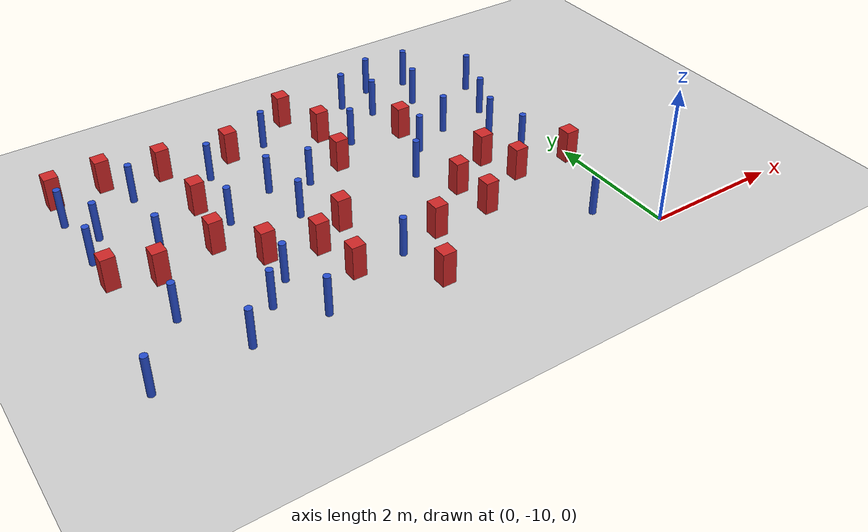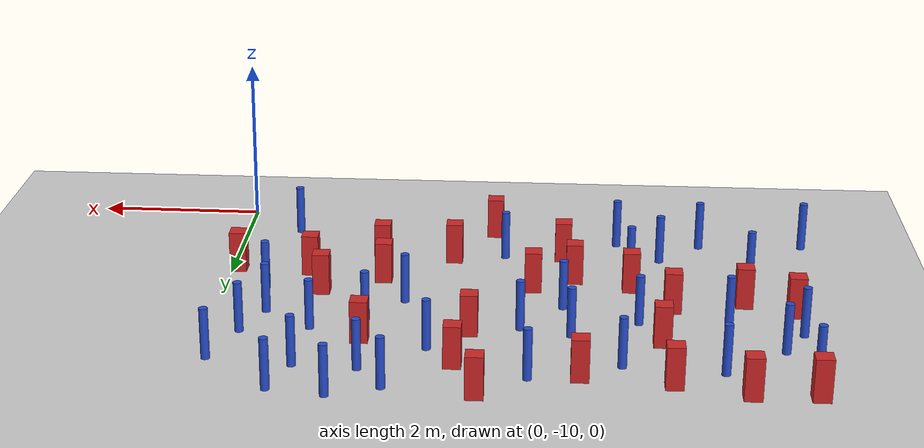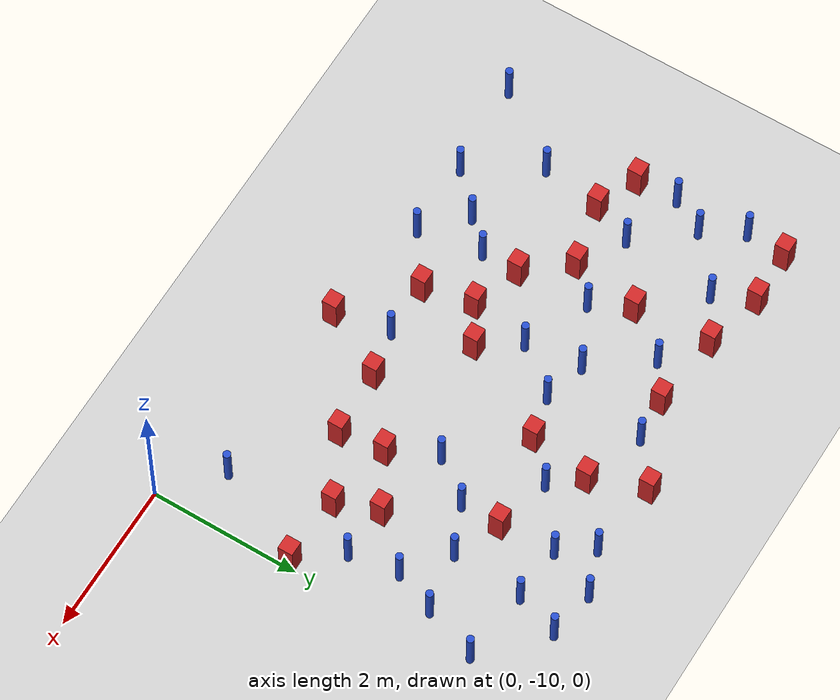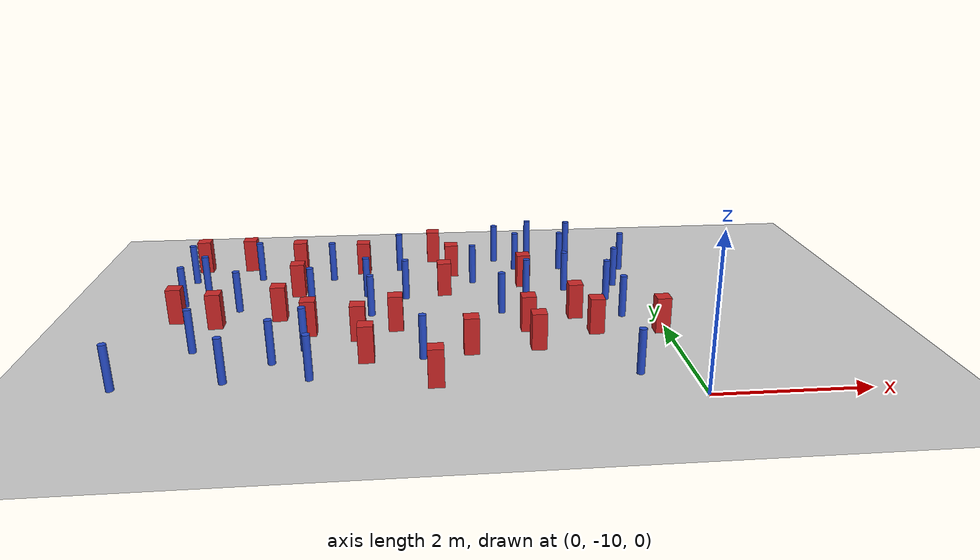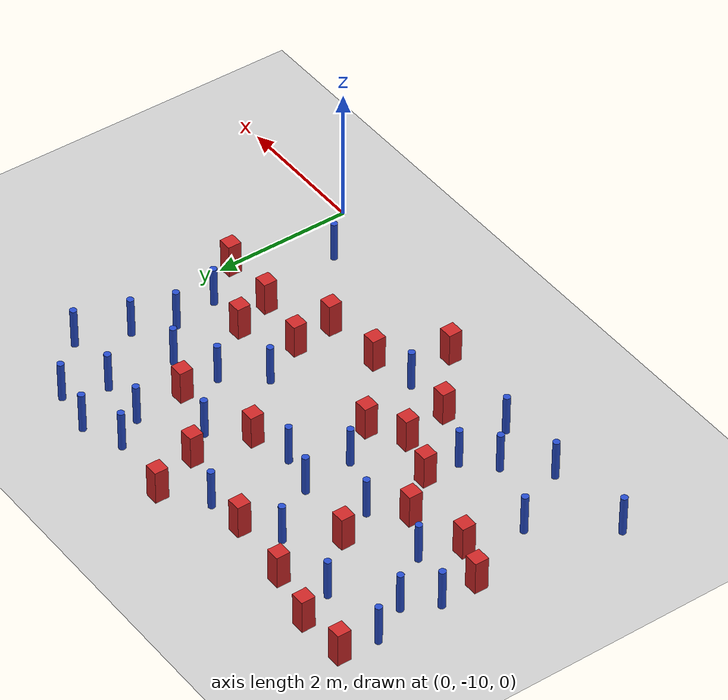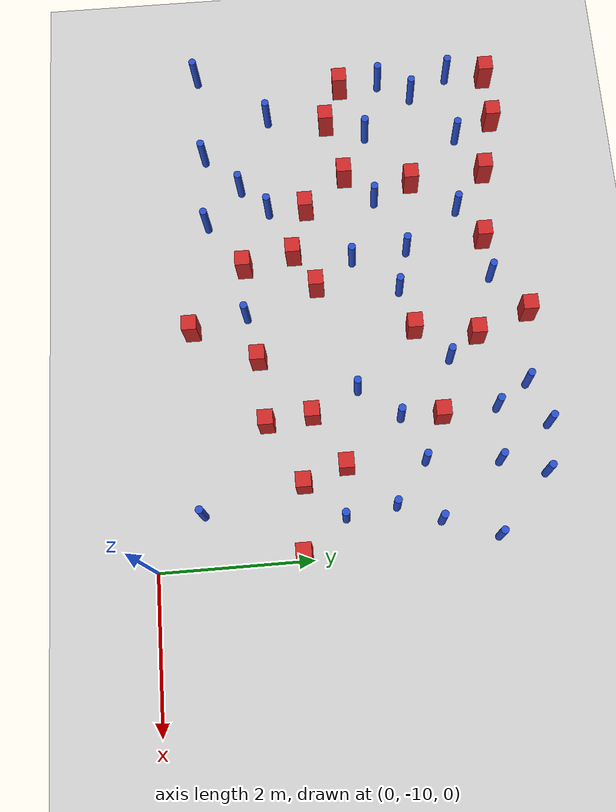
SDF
<sdf version="1.6">
 <world name="default">
  <model name="ground_plane">
   <static>1</static>
   <link name="link">
    <collision name="collision">
     <geometry><plane><normal>0 0 1</normal><size>100 100</size></plane></geometry>
     <surface><friction><ode><mu>100</mu><mu2>50</mu2></ode></friction></surface>
    </collision>
    <visual name="visual">
     <cast_shadows>0</cast_shadows>
     <geometry><plane><normal>0 0 1</normal><size>100 100</size></plane></geometry>
     <material>
      <ambient>1.0 1.0 1.0 1.0</ambient>
      <diffuse>0.8 0.8 0.8 1.0</diffuse>
      <specular>0.01 0.01 0.01 1.000000</specular>
     </material>
    </visual>
   </link>
  </model>
  <model name="square_post_obstacle3">
   <static>true</static>
   <pose>-6.00276046542 -5.0971328595 -4.36207812815e-07 3.75137919937e-06 9.77721102514e-07 2.47381364184e-05</pose>
   <link name="link">
    <pose>0 0 0.25 0 -0 0</pose>
    <inertial>
     <mass>100</mass>
     <inertia>
      <ixx>0.166667</ixx>
      <ixy>0</ixy>
      <ixz>0</ixz>
      <iyy>0.166667</iyy>
      <iyz>0</iyz>
      <izz>0.166667</izz>
     </inertia>
    </inertial>
    <collision name="collision"><geometry><box><size>.2 .2 .5</size></box></geometry></collision>
    <visual name="visual">
     <geometry><box><size>.2 .2 .5</size></box></geometry>
     <material>
      <script><name>Gazebo/Red</name><uri>file://media/materials/scripts/gazebo.material</uri></script>
     </material>
    </visual>
   </link>
  </model>
  <model name="square_post_obstacle8">
   <static>true</static>
   <pose>-1.87293484961 -7.90573309365 -4.36207812815e-07 3.75137919937e-06 9.77721102514e-07 2.47381364184e-05</pose>
   <link name="link">
    <pose>0 0 0.25 0 -0 0</pose>
    <inertial>
     <mass>100</mass>
     <inertia>
      <ixx>0.166667</ixx>
      <ixy>0</ixy>
      <ixz>0</ixz>
      <iyy>0.166667</iyy>
      <iyz>0</iyz>
      <izz>0.166667</izz>
     </inertia>
    </inertial>
    <collision name="collision"><geometry><box><size>.2 .2 .5</size></box></geometry></collision>
    <visual name="visual">
     <geometry><box><size>.2 .2 .5</size></box></geometry>
     <material>
      <script><name>Gazebo/Red</name><uri>file://media/materials/scripts/gazebo.material</uri></script>
     </material>
    </visual>
   </link>
  </model>
  <model name="pole_obstacle7">
   <static>true</static>
   <pose>-0.116427570041 -5.64152838768 -3.09024884793e-07 -7.19054271912e-07 -2.11315075136e-07 -1.93935509266e-07</pose>
   <link name="link">
    <pose>0 0 0.3 0 -0 0</pose>
    <inertial>
     <mass>1</mass>
     <inertia><ixx>0.145833</ixx><ixy>0</ixy><ixz>0</ixz><iyy>0.145833</iyy><iyz>0</iyz><izz>0.125</izz></inertia>
    </inertial>
    <collision name="collision">
     <geometry><cylinder><radius>0.05</radius><length>.6</length></cylinder></geometry>
    </collision>
    <visual name="visual">
     <geometry><cylinder><radius>0.05</radius><length>.6</length></cylinder></geometry>
     <material>
      <script><name>Gazebo/Blue</name><uri>file://media/materials/scripts/gazebo.material</uri></script>
     </material>
    </visual>
   </link>
  </model>
  <model name="square_post_obstacle30">
   <static>true</static>
   <pose>-3.09427060957 -4.92875939557 -4.36207812815e-07 3.75137919937e-06 9.77721102514e-07 2.47381364184e-05</pose>
   <link name="link">
    <pose>0 0 0.25 0 -0 0</pose>
    <inertial>
     <mass>100</mass>
     <inertia>
      <ixx>0.166667</ixx>
      <ixy>0</ixy>
      <ixz>0</ixz>
      <iyy>0.166667</iyy>
      <iyz>0</iyz>
      <izz>0.166667</izz>
     </inertia>
    </inertial>
    <collision name="collision"><geometry><box><size>.2 .2 .5</size></box></geometry></collision>
    <visual name="visual">
     <geometry><box><size>.2 .2 .5</size></box></geometry>
     <material>
      <script><name>Gazebo/Red</name><uri>file://media/materials/scripts/gazebo.material</uri></script>
     </material>
    </visual>
   </link>
  </model>
  <model name="square_post_obstacle33">
   <static>true</static>
   <pose>-0.968086502653 -8.07515536172 -4.36207812815e-07 3.75137919937e-06 9.77721102514e-07 2.47381364184e-05</pose>
   <link name="link">
    <pose>0 0 0.25 0 -0 0</pose>
    <inertial>
     <mass>100</mass>
     <inertia>
      <ixx>0.166667</ixx>
      <ixy>0</ixy>
      <ixz>0</ixz>
      <iyy>0.166667</iyy>
      <iyz>0</iyz>
      <izz>0.166667</izz>
     </inertia>
    </inertial>
    <collision name="collision"><geometry><box><size>.2 .2 .5</size></box></geometry></collision>
    <visual name="visual">
     <geometry><box><size>.2 .2 .5</size></box></geometry>
     <material>
      <script><name>Gazebo/Red</name><uri>file://media/materials/scripts/gazebo.material</uri></script>
     </material>
    </visual>
   </link>
  </model>
  <model name="pole_obstacle34">
   <static>true</static>
   <pose>-4.8326140964 -8.31596538397 -3.09024884793e-07 -7.19054271912e-07 -2.1131507513e-07 -1.93935509261e-07</pose>
   <link name="link">
    <pose>0 0 0.3 0 -0 0</pose>
    <inertial>
     <mass>1</mass>
     <inertia><ixx>0.145833</ixx><ixy>0</ixy><ixz>0</ixz><iyy>0.145833</iyy><iyz>0</iyz><izz>0.125</izz></inertia>
    </inertial>
    <collision name="collision">
     <geometry><cylinder><radius>0.05</radius><length>.6</length></cylinder></geometry>
    </collision>
    <visual name="visual">
     <geometry><cylinder><radius>0.05</radius><length>.6</length></cylinder></geometry>
     <material>
      <script><name>Gazebo/Blue</name><uri>file://media/materials/scripts/gazebo.material</uri></script>
     </material>
    </visual>
   </link>
  </model>
  <model name="pole_obstacle43">
   <static>true</static>
   <pose>-5.71055062997 -9.16776553118 -3.09024884793e-07 -7.19054271912e-07 -2.1131507513e-07 -1.93935509261e-07</pose>
   <link name="link">
    <pose>0 0 0.3 0 -0 0</pose>
    <inertial>
     <mass>1</mass>
     <inertia><ixx>0.145833</ixx><ixy>0</ixy><ixz>0</ixz><iyy>0.145833</iyy><iyz>0</iyz><izz>0.125</izz></inertia>
    </inertial>
    <collision name="collision">
     <geometry><cylinder><radius>0.05</radius><length>.6</length></cylinder></geometry>
    </collision>
    <visual name="visual">
     <geometry><cylinder><radius>0.05</radius><length>.6</length></cylinder></geometry>
     <material>
      <script><name>Gazebo/Blue</name><uri>file://media/materials/scripts/gazebo.material</uri></script>
     </material>
    </visual>
   </link>
  </model>
  <model name="square_post_obstacle48">
   <static>true</static>
   <pose>-3.66399059633 -7.73255225137 -4.36207812815e-07 3.75137919937e-06 9.77721102514e-07 2.47381364184e-05</pose>
   <link name="link">
    <pose>0 0 0.25 0 -0 0</pose>
    <inertial>
     <mass>100</mass>
     <inertia>
      <ixx>0.166667</ixx>
      <ixy>0</ixy>
      <ixz>0</ixz>
      <iyy>0.166667</iyy>
      <iyz>0</iyz>
      <izz>0.166667</izz>
     </inertia>
    </inertial>
    <collision name="collision"><geometry><box><size>.2 .2 .5</size></box></geometry></collision>
    <visual name="visual">
     <geometry><box><size>.2 .2 .5</size></box></geometry>
     <material>
      <script><name>Gazebo/Red</name><uri>file://media/materials/scripts/gazebo.material</uri></script>
     </material>
    </visual>
   </link>
  </model>
  <model name="pole_obstacle47">
   <static>true</static>
   <pose>-2.17510268073 -7.28895966684 -3.09024884793e-07 -7.19054271912e-07 -2.11315075134e-07 -1.93935509266e-07</pose>
   <link name="link">
    <pose>0 0 0.3 0 -0 0</pose>
    <inertial>
     <mass>1</mass>
     <inertia><ixx>0.145833</ixx><ixy>0</ixy><ixz>0</ixz><iyy>0.145833</iyy><iyz>0</iyz><izz>0.125</izz></inertia>
    </inertial>
    <collision name="collision">
     <geometry><cylinder><radius>0.05</radius><length>.6</length></cylinder></geometry>
    </collision>
    <visual name="visual">
     <geometry><cylinder><radius>0.05</radius><length>.6</length></cylinder></geometry>
     <material>
      <script><name>Gazebo/Blue</name><uri>file://media/materials/scripts/gazebo.material</uri></script>
     </material>
    </visual>
   </link>
  </model>
  <model name="square_post_obstacle50">
   <static>true</static>
   <pose>-4.01907634576 -8.69187092625 -4.36207812815e-07 3.75137919937e-06 9.77721102514e-07 2.47381364184e-05</pose>
   <link name="link">
    <pose>0 0 0.25 0 -0 0</pose>
    <inertial>
     <mass>100</mass>
     <inertia>
      <ixx>0.166667</ixx>
      <ixy>0</ixy>
      <ixz>0</ixz>
      <iyy>0.166667</iyy>
      <iyz>0</iyz>
      <izz>0.166667</izz>
     </inertia>
    </inertial>
    <collision name="collision"><geometry><box><size>.2 .2 .5</size></box></geometry></collision>
    <visual name="visual">
     <geometry><box><size>.2 .2 .5</size></box></geometry>
     <material>
      <script><name>Gazebo/Red</name><uri>file://media/materials/scripts/gazebo.material</uri></script>
     </material>
    </visual>
   </link>
  </model>
  <model name="square_post_obstacle52">
   <static>true</static>
   <pose>-1.16733730852 -7.51523897493 -4.36207812815e-07 3.75137919937e-06 9.77721102514e-07 2.47381364184e-05</pose>
   <link name="link">
    <pose>0 0 0.25 0 -0 0</pose>
    <inertial>
     <mass>100</mass>
     <inertia>
      <ixx>0.166667</ixx>
      <ixy>0</ixy>
      <ixz>0</ixz>
      <iyy>0.166667</iyy>
      <iyz>0</iyz>
      <izz>0.166667</izz>
     </inertia>
    </inertial>
    <collision name="collision"><geometry><box><size>.2 .2 .5</size></box></geometry></collision>
    <visual name="visual">
     <geometry><box><size>.2 .2 .5</size></box></geometry>
     <material>
      <script><name>Gazebo/Red</name><uri>file://media/materials/scripts/gazebo.material</uri></script>
     </material>
    </visual>
   </link>
  </model>
  <model name="square_post_obstacle53">
   <static>true</static>
   <pose>-3.16271652614 -9.43386406145 -4.36207812815e-07 3.75137919937e-06 9.77721102514e-07 2.47381364184e-05</pose>
   <link name="link">
    <pose>0 0 0.25 0 -0 0</pose>
    <inertial>
     <mass>100</mass>
     <inertia>
      <ixx>0.166667</ixx>
      <ixy>0</ixy>
      <ixz>0</ixz>
      <iyy>0.166667</iyy>
      <iyz>0</iyz>
      <izz>0.166667</izz>
     </inertia>
    </inertial>
    <collision name="collision"><geometry><box><size>.2 .2 .5</size></box></geometry></collision>
    <visual name="visual">
     <geometry><box><size>.2 .2 .5</size></box></geometry>
     <material>
      <script><name>Gazebo/Red</name><uri>file://media/materials/scripts/gazebo.material</uri></script>
     </material>
    </visual>
   </link>
  </model>
  <model name="pole_obstacle54">
   <static>true</static>
   <pose>-4.6617841474 -5.72175616016 -3.09024884793e-07 -7.19054271911e-07 -2.1131507516e-07 -1.93935509277e-07</pose>
   <link name="link">
    <pose>0 0 0.3 0 -0 0</pose>
    <inertial>
     <mass>1</mass>
     <inertia><ixx>0.145833</ixx><ixy>0</ixy><ixz>0</ixz><iyy>0.145833</iyy><iyz>0</iyz><izz>0.125</izz></inertia>
    </inertial>
    <collision name="collision">
     <geometry><cylinder><radius>0.05</radius><length>.6</length></cylinder></geometry>
    </collision>
    <visual name="visual">
     <geometry><cylinder><radius>0.05</radius><length>.6</length></cylinder></geometry>
     <material>
      <script><name>Gazebo/Blue</name><uri>file://media/materials/scripts/gazebo.material</uri></script>
     </material>
    </visual>
   </link>
  </model>
  <model name="square_post_obstacle58">
   <static>true</static>
   <pose>-1.75028276634 -6.21784793332 -4.36207812815e-07 3.75137919937e-06 9.77721102514e-07 2.47381364184e-05</pose>
   <link name="link">
    <pose>0 0 0.25 0 -0 0</pose>
    <inertial>
     <mass>100</mass>
     <inertia>
      <ixx>0.166667</ixx>
      <ixy>0</ixy>
      <ixz>0</ixz>
      <iyy>0.166667</iyy>
      <iyz>0</iyz>
      <izz>0.166667</izz>
     </inertia>
    </inertial>
    <collision name="collision"><geometry><box><size>.2 .2 .5</size></box></geometry></collision>
    <visual name="visual">
     <geometry><box><size>.2 .2 .5</size></box></geometry>
     <material>
      <script><name>Gazebo/Red</name><uri>file://media/materials/scripts/gazebo.material</uri></script>
     </material>
    </visual>
   </link>
  </model>
  <model name="square_post_obstacle59">
   <static>true</static>
   <pose>-5.19918778077 -5.29459210413 -4.36207812815e-07 3.75137919937e-06 9.77721102514e-07 2.47381364184e-05</pose>
   <link name="link">
    <pose>0 0 0.25 0 -0 0</pose>
    <inertial>
     <mass>100</mass>
     <inertia>
      <ixx>0.166667</ixx>
      <ixy>0</ixy>
      <ixz>0</ixz>
      <iyy>0.166667</iyy>
      <iyz>0</iyz>
      <izz>0.166667</izz>
     </inertia>
    </inertial>
    <collision name="collision"><geometry><box><size>.2 .2 .5</size></box></geometry></collision>
    <visual name="visual">
     <geometry><box><size>.2 .2 .5</size></box></geometry>
     <material>
      <script><name>Gazebo/Red</name><uri>file://media/materials/scripts/gazebo.material</uri></script>
     </material>
    </visual>
   </link>
  </model>
  <model name="pole_obstacle60">
   <static>true</static>
   <pose>-1.15331564496 -6.48685393542 -3.09024884793e-07 -7.19054271912e-07 -2.11315075134e-07 -1.93935509265e-07</pose>
   <link name="link">
    <pose>0 0 0.3 0 -0 0</pose>
    <inertial>
     <mass>1</mass>
     <inertia><ixx>0.145833</ixx><ixy>0</ixy><ixz>0</ixz><iyy>0.145833</iyy><iyz>0</iyz><izz>0.125</izz></inertia>
    </inertial>
    <collision name="collision">
     <geometry><cylinder><radius>0.05</radius><length>.6</length></cylinder></geometry>
    </collision>
    <visual name="visual">
     <geometry><cylinder><radius>0.05</radius><length>.6</length></cylinder></geometry>
     <material>
      <script><name>Gazebo/Blue</name><uri>file://media/materials/scripts/gazebo.material</uri></script>
     </material>
    </visual>
   </link>
  </model>
  <model name="pole_obstacle67">
   <static>true</static>
   <pose>-3.63953868584 -5.36636908471 -3.09024884848e-07 -7.19054271903e-07 -2.11315075193e-07 -1.93935509285e-07</pose>
   <link name="link">
    <pose>0 0 0.3 0 -0 0</pose>
    <inertial>
     <mass>1</mass>
     <inertia><ixx>0.145833</ixx><ixy>0</ixy><ixz>0</ixz><iyy>0.145833</iyy><iyz>0</iyz><izz>0.125</izz></inertia>
    </inertial>
    <collision name="collision">
     <geometry><cylinder><radius>0.05</radius><length>.6</length></cylinder></geometry>
    </collision>
    <visual name="visual">
     <geometry><cylinder><radius>0.05</radius><length>.6</length></cylinder></geometry>
     <material>
      <script><name>Gazebo/Blue</name><uri>file://media/materials/scripts/gazebo.material</uri></script>
     </material>
    </visual>
   </link>
  </model>
  <model name="square_post_obstacle73">
   <static>true</static>
   <pose>-0.0788364166553 -8.12637603178 -4.36207812815e-07 3.75137919937e-06 9.77721102514e-07 2.47381364184e-05</pose>
   <link name="link">
    <pose>0 0 0.25 0 -0 0</pose>
    <inertial>
     <mass>100</mass>
     <inertia>
      <ixx>0.166667</ixx>
      <ixy>0</ixy>
      <ixz>0</ixz>
      <iyy>0.166667</iyy>
      <iyz>0</iyz>
      <izz>0.166667</izz>
     </inertia>
    </inertial>
    <collision name="collision"><geometry><box><size>.2 .2 .5</size></box></geometry></collision>
    <visual name="visual">
     <geometry><box><size>.2 .2 .5</size></box></geometry>
     <material>
      <script><name>Gazebo/Red</name><uri>file://media/materials/scripts/gazebo.material</uri></script>
     </material>
    </visual>
   </link>
  </model>
  <model name="square_post_obstacle76">
   <static>true</static>
   <pose>-5.1235877152 -6.32033725181 -4.36207812815e-07 3.75137919937e-06 9.77721102514e-07 2.47381364184e-05</pose>
   <link name="link">
    <pose>0 0 0.25 0 -0 0</pose>
    <inertial>
     <mass>100</mass>
     <inertia>
      <ixx>0.166667</ixx>
      <ixy>0</ixy>
      <ixz>0</ixz>
      <iyy>0.166667</iyy>
      <iyz>0</iyz>
      <izz>0.166667</izz>
     </inertia>
    </inertial>
    <collision name="collision"><geometry><box><size>.2 .2 .5</size></box></geometry></collision>
    <visual name="visual">
     <geometry><box><size>.2 .2 .5</size></box></geometry>
     <material>
      <script><name>Gazebo/Red</name><uri>file://media/materials/scripts/gazebo.material</uri></script>
     </material>
    </visual>
   </link>
  </model>
  <model name="pole_obstacle98">
   <static>true</static>
   <pose>-4.11009366022 -6.46756475279 -3.09024884793e-07 -7.19054271911e-07 -2.1131507516e-07 -1.93935509277e-07</pose>
   <link name="link">
    <pose>0 0 0.3 0 -0 0</pose>
    <inertial>
     <mass>1</mass>
     <inertia><ixx>0.145833</ixx><ixy>0</ixy><ixz>0</ixz><iyy>0.145833</iyy><iyz>0</iyz><izz>0.125</izz></inertia>
    </inertial>
    <collision name="collision">
     <geometry><cylinder><radius>0.05</radius><length>.6</length></cylinder></geometry>
    </collision>
    <visual name="visual">
     <geometry><cylinder><radius>0.05</radius><length>.6</length></cylinder></geometry>
     <material>
      <script><name>Gazebo/Blue</name><uri>file://media/materials/scripts/gazebo.material</uri></script>
     </material>
    </visual>
   </link>
  </model>
  <model name="pole_obstacle100">
   <static>true</static>
   <pose>-3.30623165146 -8.69643244053 -3.09024884793e-07 -7.19054271912e-07 -2.11315075137e-07 -1.93935509267e-07</pose>
   <link name="link">
    <pose>0 0 0.3 0 -0 0</pose>
    <inertial>
     <mass>1</mass>
     <inertia><ixx>0.145833</ixx><ixy>0</ixy><ixz>0</ixz><iyy>0.145833</iyy><iyz>0</iyz><izz>0.125</izz></inertia>
    </inertial>
    <collision name="collision">
     <geometry><cylinder><radius>0.05</radius><length>.6</length></cylinder></geometry>
    </collision>
    <visual name="visual">
     <geometry><cylinder><radius>0.05</radius><length>.6</length></cylinder></geometry>
     <material>
      <script><name>Gazebo/Blue</name><uri>file://media/materials/scripts/gazebo.material</uri></script>
     </material>
    </visual>
   </link>
  </model>
  <model name="square_post_obstacle89">
   <static>true</static>
   <pose>-2.9631400983 -6.47000109566 -4.36207812815e-07 3.75137919937e-06 9.77721102514e-07 2.47381364184e-05</pose>
   <link name="link">
    <pose>0 0 0.25 0 -0 0</pose>
    <inertial>
     <mass>100</mass>
     <inertia>
      <ixx>0.166667</ixx>
      <ixy>0</ixy>
      <ixz>0</ixz>
      <iyy>0.166667</iyy>
      <iyz>0</iyz>
      <izz>0.166667</izz>
     </inertia>
    </inertial>
    <collision name="collision"><geometry><box><size>.2 .2 .5</size></box></geometry></collision>
    <visual name="visual">
     <geometry><box><size>.2 .2 .5</size></box></geometry>
     <material>
      <script><name>Gazebo/Red</name><uri>file://media/materials/scripts/gazebo.material</uri></script>
     </material>
    </visual>
   </link>
  </model>
  <model name="pole_obstacle109">
   <static>true</static>
   <pose>-4.88362288577 -6.84523428579 -3.09024884793e-07 -7.19054271911e-07 -2.1131507516e-07 -1.93935509277e-07</pose>
   <link name="link">
    <pose>0 0 0.3 0 -0 0</pose>
    <inertial>
     <mass>1</mass>
     <inertia><ixx>0.145833</ixx><ixy>0</ixy><ixz>0</ixz><iyy>0.145833</iyy><iyz>0</iyz><izz>0.125</izz></inertia>
    </inertial>
    <collision name="collision">
     <geometry><cylinder><radius>0.05</radius><length>.6</length></cylinder></geometry>
    </collision>
    <visual name="visual">
     <geometry><cylinder><radius>0.05</radius><length>.6</length></cylinder></geometry>
     <material>
      <script><name>Gazebo/Blue</name><uri>file://media/materials/scripts/gazebo.material</uri></script>
     </material>
    </visual>
   </link>
  </model>
  <model name="pole_obstacle112">
   <static>true</static>
   <pose>-0.667018413034 -9.37456317982 -3.09024884793e-07 -7.19054271911e-07 -2.11315075158e-07 -1.93935509277e-07</pose>
   <link name="link">
    <pose>0 0 0.3 0 -0 0</pose>
    <inertial>
     <mass>1</mass>
     <inertia><ixx>0.145833</ixx><ixy>0</ixy><ixz>0</ixz><iyy>0.145833</iyy><iyz>0</iyz><izz>0.125</izz></inertia>
    </inertial>
    <collision name="collision">
     <geometry><cylinder><radius>0.05</radius><length>.6</length></cylinder></geometry>
    </collision>
    <visual name="visual">
     <geometry><cylinder><radius>0.05</radius><length>.6</length></cylinder></geometry>
     <material>
      <script><name>Gazebo/Blue</name><uri>file://media/materials/scripts/gazebo.material</uri></script>
     </material>
    </visual>
   </link>
  </model>
  <model name="pole_obstacle114">
   <static>true</static>
   <pose>-1.79661520682 -5.48379876277 -3.09024884793e-07 -7.19054271912e-07 -2.11315075134e-07 -1.93935509265e-07</pose>
   <link name="link">
    <pose>0 0 0.3 0 -0 0</pose>
    <inertial>
     <mass>1</mass>
     <inertia><ixx>0.145833</ixx><ixy>0</ixy><ixz>0</ixz><iyy>0.145833</iyy><iyz>0</iyz><izz>0.125</izz></inertia>
    </inertial>
    <collision name="collision">
     <geometry><cylinder><radius>0.05</radius><length>.6</length></cylinder></geometry>
    </collision>
    <visual name="visual">
     <geometry><cylinder><radius>0.05</radius><length>.6</length></cylinder></geometry>
     <material>
      <script><name>Gazebo/Blue</name><uri>file://media/materials/scripts/gazebo.material</uri></script>
     </material>
    </visual>
   </link>
  </model>
  <model name="pole_obstacle115">
   <static>true</static>
   <pose>-5.90617883429 -6.89209488714 -3.09024884793e-07 -7.19054271911e-07 -2.1131507516e-07 -1.93935509277e-07</pose>
   <link name="link">
    <pose>0 0 0.3 0 -0 0</pose>
    <inertial>
     <mass>1</mass>
     <inertia><ixx>0.145833</ixx><ixy>0</ixy><ixz>0</ixz><iyy>0.145833</iyy><iyz>0</iyz><izz>0.125</izz></inertia>
    </inertial>
    <collision name="collision">
     <geometry><cylinder><radius>0.05</radius><length>.6</length></cylinder></geometry>
    </collision>
    <visual name="visual">
     <geometry><cylinder><radius>0.05</radius><length>.6</length></cylinder></geometry>
     <material>
      <script><name>Gazebo/Blue</name><uri>file://media/materials/scripts/gazebo.material</uri></script>
     </material>
    </visual>
   </link>
  </model>
  <model name="pole_obstacle116">
   <static>true</static>
   <pose>-2.09701376354 -5.05747303563 -3.09024884793e-07 -7.19054271912e-07 -2.11315075134e-07 -1.93935509266e-07</pose>
   <link name="link">
    <pose>0 0 0.3 0 -0 0</pose>
    <inertial>
     <mass>1</mass>
     <inertia><ixx>0.145833</ixx><ixy>0</ixy><ixz>0</ixz><iyy>0.145833</iyy><iyz>0</iyz><izz>0.125</izz></inertia>
    </inertial>
    <collision name="collision">
     <geometry><cylinder><radius>0.05</radius><length>.6</length></cylinder></geometry>
    </collision>
    <visual name="visual">
     <geometry><cylinder><radius>0.05</radius><length>.6</length></cylinder></geometry>
     <material>
      <script><name>Gazebo/Blue</name><uri>file://media/materials/scripts/gazebo.material</uri></script>
     </material>
    </visual>
   </link>
  </model>
  <model name="pole_obstacle123">
   <static>true</static>
   <pose>-5.77235732267 -5.61809090305 -3.09024884793e-07 -7.19054271911e-07 -2.1131507516e-07 -1.93935509277e-07</pose>
   <link name="link">
    <pose>0 0 0.3 0 -0 0</pose>
    <inertial>
     <mass>1</mass>
     <inertia><ixx>0.145833</ixx><ixy>0</ixy><ixz>0</ixz><iyy>0.145833</iyy><iyz>0</iyz><izz>0.125</izz></inertia>
    </inertial>
    <collision name="collision">
     <geometry><cylinder><radius>0.05</radius><length>.6</length></cylinder></geometry>
    </collision>
    <visual name="visual">
     <geometry><cylinder><radius>0.05</radius><length>.6</length></cylinder></geometry>
     <material>
      <script><name>Gazebo/Blue</name><uri>file://media/materials/scripts/gazebo.material</uri></script>
     </material>
    </visual>
   </link>
  </model>
  <model name="pole_obstacle128">
   <static>true</static>
   <pose>-4.01821982749 -7.22079764416 -3.09024884793e-07 -7.19054271911e-07 -2.11315075165e-07 -1.9393550928e-07</pose>
   <link name="link">
    <pose>0 0 0.3 0 -0 0</pose>
    <inertial>
     <mass>1</mass>
     <inertia><ixx>0.145833</ixx><ixy>0</ixy><ixz>0</ixz><iyy>0.145833</iyy><iyz>0</iyz><izz>0.125</izz></inertia>
    </inertial>
    <collision name="collision">
     <geometry><cylinder><radius>0.05</radius><length>.6</length></cylinder></geometry>
    </collision>
    <visual name="visual">
     <geometry><cylinder><radius>0.05</radius><length>.6</length></cylinder></geometry>
     <material>
      <script><name>Gazebo/Blue</name><uri>file://media/materials/scripts/gazebo.material</uri></script>
     </material>
    </visual>
   </link>
  </model>
  <model name="square_post_obstacle115">
   <static>true</static>
   <pose>-6.69328758737 -7.19517452916 -4.36207812815e-07 3.75137919937e-06 9.77721102514e-07 2.47381364184e-05</pose>
   <link name="link">
    <pose>0 0 0.25 0 -0 0</pose>
    <inertial>
     <mass>100</mass>
     <inertia>
      <ixx>0.166667</ixx>
      <ixy>0</ixy>
      <ixz>0</ixz>
      <iyy>0.166667</iyy>
      <iyz>0</iyz>
      <izz>0.166667</izz>
     </inertia>
    </inertial>
    <collision name="collision"><geometry><box><size>.2 .2 .5</size></box></geometry></collision>
    <visual name="visual">
     <geometry><box><size>.2 .2 .5</size></box></geometry>
     <material>
      <script><name>Gazebo/Red</name><uri>file://media/materials/scripts/gazebo.material</uri></script>
     </material>
    </visual>
   </link>
  </model>
  <model name="pole_obstacle135">
   <static>true</static>
   <pose>-6.47810907923 -6.19457628557 -3.09024884793e-07 -7.19054271911e-07 -2.1131507516e-07 -1.93935509277e-07</pose>
   <link name="link">
    <pose>0 0 0.3 0 -0 0</pose>
    <inertial>
     <mass>1</mass>
     <inertia><ixx>0.145833</ixx><ixy>0</ixy><ixz>0</ixz><iyy>0.145833</iyy><iyz>0</iyz><izz>0.125</izz></inertia>
    </inertial>
    <collision name="collision">
     <geometry><cylinder><radius>0.05</radius><length>.6</length></cylinder></geometry>
    </collision>
    <visual name="visual">
     <geometry><cylinder><radius>0.05</radius><length>.6</length></cylinder></geometry>
     <material>
      <script><name>Gazebo/Blue</name><uri>file://media/materials/scripts/gazebo.material</uri></script>
     </material>
    </visual>
   </link>
  </model>
  <model name="square_post_obstacle136">
   <static>true</static>
   <pose>-2.82220053654 -5.64241659469 -4.36207812815e-07 3.75137919937e-06 9.77721102514e-07 2.47381364184e-05</pose>
   <link name="link">
    <pose>0 0 0.25 0 -0 0</pose>
    <inertial>
     <mass>100</mass>
     <inertia>
      <ixx>0.166667</ixx>
      <ixy>0</ixy>
      <ixz>0</ixz>
      <iyy>0.166667</iyy>
      <iyz>0</iyz>
      <izz>0.166667</izz>
     </inertia>
    </inertial>
    <collision name="collision"><geometry><box><size>.2 .2 .5</size></box></geometry></collision>
    <visual name="visual">
     <geometry><box><size>.2 .2 .5</size></box></geometry>
     <material>
      <script><name>Gazebo/Red</name><uri>file://media/materials/scripts/gazebo.material</uri></script>
     </material>
    </visual>
   </link>
  </model>
  <model name="pole_obstacle147">
   <static>true</static>
   <pose>-0.593938877173 -6.91154278654 -3.09024884793e-07 -7.19054271912e-07 -2.11315075129e-07 -1.93935509261e-07</pose>
   <link name="link">
    <pose>0 0 0.3 0 -0 0</pose>
    <inertial>
     <mass>1</mass>
     <inertia><ixx>0.145833</ixx><ixy>0</ixy><ixz>0</ixz><iyy>0.145833</iyy><iyz>0</iyz><izz>0.125</izz></inertia>
    </inertial>
    <collision name="collision">
     <geometry><cylinder><radius>0.05</radius><length>.6</length></cylinder></geometry>
    </collision>
    <visual name="visual">
     <geometry><cylinder><radius>0.05</radius><length>.6</length></cylinder></geometry>
     <material>
      <script><name>Gazebo/Blue</name><uri>file://media/materials/scripts/gazebo.material</uri></script>
     </material>
    </visual>
   </link>
  </model>
  <model name="square_post_obstacle141">
   <static>true</static>
   <pose>-2.68657871046 -8.56733343162 -4.36207812815e-07 3.75137919937e-06 9.77721102514e-07 2.47381364184e-05</pose>
   <link name="link">
    <pose>0 0 0.25 0 -0 0</pose>
    <inertial>
     <mass>100</mass>
     <inertia>
      <ixx>0.166667</ixx>
      <ixy>0</ixy>
      <ixz>0</ixz>
      <iyy>0.166667</iyy>
      <iyz>0</iyz>
      <izz>0.166667</izz>
     </inertia>
    </inertial>
    <collision name="collision"><geometry><box><size>.2 .2 .5</size></box></geometry></collision>
    <visual name="visual">
     <geometry><box><size>.2 .2 .5</size></box></geometry>
     <material>
      <script><name>Gazebo/Red</name><uri>file://media/materials/scripts/gazebo.material</uri></script>
     </material>
    </visual>
   </link>
  </model>
  <model name="pole_obstacle158">
   <static>true</static>
   <pose>-3.53450509645 -6.61639379699 -3.09024884793e-07 -7.19054271912e-07 -2.11315075134e-07 -1.93935509266e-07</pose>
   <link name="link">
    <pose>0 0 0.3 0 -0 0</pose>
    <inertial>
     <mass>1</mass>
     <inertia><ixx>0.145833</ixx><ixy>0</ixy><ixz>0</ixz><iyy>0.145833</iyy><iyz>0</iyz><izz>0.125</izz></inertia>
    </inertial>
    <collision name="collision">
     <geometry><cylinder><radius>0.05</radius><length>.6</length></cylinder></geometry>
    </collision>
    <visual name="visual">
     <geometry><cylinder><radius>0.05</radius><length>.6</length></cylinder></geometry>
     <material>
      <script><name>Gazebo/Blue</name><uri>file://media/materials/scripts/gazebo.material</uri></script>
     </material>
    </visual>
   </link>
  </model>
  <model name="square_post_obstacle157">
   <static>true</static>
   <pose>-4.15458452498 -8.01385528971 -4.36207812815e-07 3.75137919937e-06 9.77721102514e-07 2.47381364184e-05</pose>
   <link name="link">
    <pose>0 0 0.25 0 -0 0</pose>
    <inertial>
     <mass>100</mass>
     <inertia>
      <ixx>0.166667</ixx>
      <ixy>0</ixy>
      <ixz>0</ixz>
      <iyy>0.166667</iyy>
      <iyz>0</iyz>
      <izz>0.166667</izz>
     </inertia>
    </inertial>
    <collision name="collision"><geometry><box><size>.2 .2 .5</size></box></geometry></collision>
    <visual name="visual">
     <geometry><box><size>.2 .2 .5</size></box></geometry>
     <material>
      <script><name>Gazebo/Red</name><uri>file://media/materials/scripts/gazebo.material</uri></script>
     </material>
    </visual>
   </link>
  </model>
  <model name="square_post_obstacle163">
   <static>true</static>
   <pose>-4.82094241826 -7.80079124392 -4.36207812815e-07 3.75137919937e-06 9.77721102514e-07 2.47381364184e-05</pose>
   <link name="link">
    <pose>0 0 0.25 0 -0 0</pose>
    <inertial>
     <mass>100</mass>
     <inertia>
      <ixx>0.166667</ixx>
      <ixy>0</ixy>
      <ixz>0</ixz>
      <iyy>0.166667</iyy>
      <iyz>0</iyz>
      <izz>0.166667</izz>
     </inertia>
    </inertial>
    <collision name="collision"><geometry><box><size>.2 .2 .5</size></box></geometry></collision>
    <visual name="visual">
     <geometry><box><size>.2 .2 .5</size></box></geometry>
     <material>
      <script><name>Gazebo/Red</name><uri>file://media/materials/scripts/gazebo.material</uri></script>
     </material>
    </visual>
   </link>
  </model>
  <model name="pole_obstacle174">
   <static>true</static>
   <pose>-6.72588692631 -6.64371320738 -3.09024884793e-07 -7.19054271911e-07 -2.1131507516e-07 -1.93935509277e-07</pose>
   <link name="link">
    <pose>0 0 0.3 0 -0 0</pose>
    <inertial>
     <mass>1</mass>
     <inertia><ixx>0.145833</ixx><ixy>0</ixy><ixz>0</ixz><iyy>0.145833</iyy><iyz>0</iyz><izz>0.125</izz></inertia>
    </inertial>
    <collision name="collision">
     <geometry><cylinder><radius>0.05</radius><length>.6</length></cylinder></geometry>
    </collision>
    <visual name="visual">
     <geometry><cylinder><radius>0.05</radius><length>.6</length></cylinder></geometry>
     <material>
      <script><name>Gazebo/Blue</name><uri>file://media/materials/scripts/gazebo.material</uri></script>
     </material>
    </visual>
   </link>
  </model>
  <model name="square_post_obstacle170">
   <static>true</static>
   <pose>-5.28274349998 -7.23727846553 -4.36207812815e-07 3.75137919937e-06 9.77721102514e-07 2.47381364184e-05</pose>
   <link name="link">
    <pose>0 0 0.25 0 -0 0</pose>
    <inertial>
     <mass>100</mass>
     <inertia>
      <ixx>0.166667</ixx>
      <ixy>0</ixy>
      <ixz>0</ixz>
      <iyy>0.166667</iyy>
      <iyz>0</iyz>
      <izz>0.166667</izz>
     </inertia>
    </inertial>
    <collision name="collision"><geometry><box><size>.2 .2 .5</size></box></geometry></collision>
    <visual name="visual">
     <geometry><box><size>.2 .2 .5</size></box></geometry>
     <material>
      <script><name>Gazebo/Red</name><uri>file://media/materials/scripts/gazebo.material</uri></script>
     </material>
    </visual>
   </link>
  </model>
  <model name="pole_obstacle183">
   <static>true</static>
   <pose>-4.68589607145 -9.16973188831 -3.09024884793e-07 -7.19054271912e-07 -2.1131507513e-07 -1.93935509261e-07</pose>
   <link name="link">
    <pose>0 0 0.3 0 -0 0</pose>
    <inertial>
     <mass>1</mass>
     <inertia><ixx>0.145833</ixx><ixy>0</ixy><ixz>0</ixz><iyy>0.145833</iyy><iyz>0</iyz><izz>0.125</izz></inertia>
    </inertial>
    <collision name="collision">
     <geometry><cylinder><radius>0.05</radius><length>.6</length></cylinder></geometry>
    </collision>
    <visual name="visual">
     <geometry><cylinder><radius>0.05</radius><length>.6</length></cylinder></geometry>
     <material>
      <script><name>Gazebo/Blue</name><uri>file://media/materials/scripts/gazebo.material</uri></script>
     </material>
    </visual>
   </link>
  </model>
  <model name="pole_obstacle185">
   <static>true</static>
   <pose>-6.76574518127 -5.65952526431 -3.09024884793e-07 -7.19054271911e-07 -2.1131507516e-07 -1.93935509277e-07</pose>
   <link name="link">
    <pose>0 0 0.3 0 -0 0</pose>
    <inertial>
     <mass>1</mass>
     <inertia><ixx>0.145833</ixx><ixy>0</ixy><ixz>0</ixz><iyy>0.145833</iyy><iyz>0</iyz><izz>0.125</izz></inertia>
    </inertial>
    <collision name="collision">
     <geometry><cylinder><radius>0.05</radius><length>.6</length></cylinder></geometry>
    </collision>
    <visual name="visual">
     <geometry><cylinder><radius>0.05</radius><length>.6</length></cylinder></geometry>
     <material>
      <script><name>Gazebo/Blue</name><uri>file://media/materials/scripts/gazebo.material</uri></script>
     </material>
    </visual>
   </link>
  </model>
  <model name="square_post_obstacle175">
   <static>true</static>
   <pose>-6.71575062232 -5.11822528603 -4.36207812815e-07 3.75137919937e-06 9.77721102514e-07 2.47381364184e-05</pose>
   <link name="link">
    <pose>0 0 0.25 0 -0 0</pose>
    <inertial>
     <mass>100</mass>
     <inertia>
      <ixx>0.166667</ixx>
      <ixy>0</ixy>
      <ixz>0</ixz>
      <iyy>0.166667</iyy>
      <iyz>0</iyz>
      <izz>0.166667</izz>
     </inertia>
    </inertial>
    <collision name="collision"><geometry><box><size>.2 .2 .5</size></box></geometry></collision>
    <visual name="visual">
     <geometry><box><size>.2 .2 .5</size></box></geometry>
     <material>
      <script><name>Gazebo/Red</name><uri>file://media/materials/scripts/gazebo.material</uri></script>
     </material>
    </visual>
   </link>
  </model>
  <model name="square_post_obstacle181">
   <static>true</static>
   <pose>-6.11965471049 -7.43270942692 -4.36207812815e-07 3.75137919937e-06 9.77721102514e-07 2.47381364184e-05</pose>
   <link name="link">
    <pose>0 0 0.25 0 -0 0</pose>
    <inertial>
     <mass>100</mass>
     <inertia>
      <ixx>0.166667</ixx>
      <ixy>0</ixy>
      <ixz>0</ixz>
      <iyy>0.166667</iyy>
      <iyz>0</iyz>
      <izz>0.166667</izz>
     </inertia>
    </inertial>
    <collision name="collision"><geometry><box><size>.2 .2 .5</size></box></geometry></collision>
    <visual name="visual">
     <geometry><box><size>.2 .2 .5</size></box></geometry>
     <material>
      <script><name>Gazebo/Red</name><uri>file://media/materials/scripts/gazebo.material</uri></script>
     </material>
    </visual>
   </link>
  </model>
  <model name="square_post_obstacle184">
   <static>true</static>
   <pose>-4.20066603699 -5.40871287737 -4.36207812815e-07 3.75137919937e-06 9.77721102514e-07 2.47381364184e-05</pose>
   <link name="link">
    <pose>0 0 0.25 0 -0 0</pose>
    <inertial>
     <mass>100</mass>
     <inertia>
      <ixx>0.166667</ixx>
      <ixy>0</ixy>
      <ixz>0</ixz>
      <iyy>0.166667</iyy>
      <iyz>0</iyz>
      <izz>0.166667</izz>
     </inertia>
    </inertial>
    <collision name="collision"><geometry><box><size>.2 .2 .5</size></box></geometry></collision>
    <visual name="visual">
     <geometry><box><size>.2 .2 .5</size></box></geometry>
     <material>
      <script><name>Gazebo/Red</name><uri>file://media/materials/scripts/gazebo.material</uri></script>
     </material>
    </visual>
   </link>
  </model>
  <model name="square_post_obstacle192">
   <static>true</static>
   <pose>-1.80846645586 -8.5073114422 -4.36207812815e-07 3.75137919937e-06 9.77721102514e-07 2.47381364184e-05</pose>
   <link name="link">
    <pose>0 0 0.25 0 -0 0</pose>
    <inertial>
     <mass>100</mass>
     <inertia>
      <ixx>0.166667</ixx>
      <ixy>0</ixy>
      <ixz>0</ixz>
      <iyy>0.166667</iyy>
      <iyz>0</iyz>
      <izz>0.166667</izz>
     </inertia>
    </inertial>
    <collision name="collision"><geometry><box><size>.2 .2 .5</size></box></geometry></collision>
    <visual name="visual">
     <geometry><box><size>.2 .2 .5</size></box></geometry>
     <material>
      <script><name>Gazebo/Red</name><uri>file://media/materials/scripts/gazebo.material</uri></script>
     </material>
    </visual>
   </link>
  </model>
  <model name="pole_obstacle189">
   <static>true</static>
   <pose>-1.52163869688 -4.84064018304 -3.09024884793e-07 -7.19054271912e-07 -2.11315075134e-07 -1.93935509265e-07</pose>
   <link name="link">
    <pose>0 0 0.3 0 -0 0</pose>
    <inertial>
     <mass>1</mass>
     <inertia><ixx>0.145833</ixx><ixy>0</ixy><ixz>0</ixz><iyy>0.145833</iyy><iyz>0</iyz><izz>0.125</izz></inertia>
    </inertial>
    <collision name="collision">
     <geometry><cylinder><radius>0.05</radius><length>.6</length></cylinder></geometry>
    </collision>
    <visual name="visual">
     <geometry><cylinder><radius>0.05</radius><length>.6</length></cylinder></geometry>
     <material>
      <script><name>Gazebo/Blue</name><uri>file://media/materials/scripts/gazebo.material</uri></script>
     </material>
    </visual>
   </link>
  </model>
  <model name="pole_obstacle196">
   <static>true</static>
   <pose>-0.369090890343 -6.3549096529 -3.09024884793e-07 -7.19054271912e-07 -2.1131507513e-07 -1.93935509262e-07</pose>
   <link name="link">
    <pose>0 0 0.3 0 -0 0</pose>
    <inertial>
     <mass>1</mass>
     <inertia><ixx>0.145833</ixx><ixy>0</ixy><ixz>0</ixz><iyy>0.145833</iyy><iyz>0</iyz><izz>0.125</izz></inertia>
    </inertial>
    <collision name="collision">
     <geometry><cylinder><radius>0.05</radius><length>.6</length></cylinder></geometry>
    </collision>
    <visual name="visual">
     <geometry><cylinder><radius>0.05</radius><length>.6</length></cylinder></geometry>
     <material>
      <script><name>Gazebo/Blue</name><uri>file://media/materials/scripts/gazebo.material</uri></script>
     </material>
    </visual>
   </link>
  </model>
  <model name="pole_obstacle198">
   <static>true</static>
   <pose>-6.26380639157 -8.25276823453 -3.09024884793e-07 -7.19054271912e-07 -2.1131507513e-07 -1.93935509261e-07</pose>
   <link name="link">
    <pose>0 0 0.3 0 -0 0</pose>
    <inertial>
     <mass>1</mass>
     <inertia><ixx>0.145833</ixx><ixy>0</ixy><ixz>0</ixz><iyy>0.145833</iyy><iyz>0</iyz><izz>0.125</izz></inertia>
    </inertial>
    <collision name="collision">
     <geometry><cylinder><radius>0.05</radius><length>.6</length></cylinder></geometry>
    </collision>
    <visual name="visual">
     <geometry><cylinder><radius>0.05</radius><length>.6</length></cylinder></geometry>
     <material>
      <script><name>Gazebo/Blue</name><uri>file://media/materials/scripts/gazebo.material</uri></script>
     </material>
    </visual>
   </link>
  </model>
  <model name="pole_obstacle199">
   <static>true</static>
   <pose>-1.07965315018 -5.52884753838 -3.09024884793e-07 -7.19054271912e-07 -2.11315075134e-07 -1.93935509265e-07</pose>
   <link name="link">
    <pose>0 0 0.3 0 -0 0</pose>
    <inertial>
     <mass>1</mass>
     <inertia><ixx>0.145833</ixx><ixy>0</ixy><ixz>0</ixz><iyy>0.145833</iyy><iyz>0</iyz><izz>0.125</izz></inertia>
    </inertial>
    <collision name="collision">
     <geometry><cylinder><radius>0.05</radius><length>.6</length></cylinder></geometry>
    </collision>
    <visual name="visual">
     <geometry><cylinder><radius>0.05</radius><length>.6</length></cylinder></geometry>
     <material>
      <script><name>Gazebo/Blue</name><uri>file://media/materials/scripts/gazebo.material</uri></script>
     </material>
    </visual>
   </link>
  </model>
  <model name="pole_obstacle200">
   <static>true</static>
   <pose>-6.99059930596 -9.23200812977 -3.09024884793e-07 -7.19054271912e-07 -2.1131507513e-07 -1.93935509261e-07</pose>
   <link name="link">
    <pose>0 0 0.3 0 -0 0</pose>
    <inertial>
     <mass>1</mass>
     <inertia><ixx>0.145833</ixx><ixy>0</ixy><ixz>0</ixz><iyy>0.145833</iyy><iyz>0</iyz><izz>0.125</izz></inertia>
    </inertial>
    <collision name="collision">
     <geometry><cylinder><radius>0.05</radius><length>.6</length></cylinder></geometry>
    </collision>
    <visual name="visual">
     <geometry><cylinder><radius>0.05</radius><length>.6</length></cylinder></geometry>
     <material>
      <script><name>Gazebo/Blue</name><uri>file://media/materials/scripts/gazebo.material</uri></script>
     </material>
    </visual>
   </link>
  </model>
  <model name="pole_obstacle201">
   <static>true</static>
   <pose>-0.882876337792 -4.94531336582 -3.09024884793e-07 -7.19054271912e-07 -2.11315075129e-07 -1.93935509261e-07</pose>
   <link name="link">
    <pose>0 0 0.3 0 -0 0</pose>
    <inertial>
     <mass>1</mass>
     <inertia><ixx>0.145833</ixx><ixy>0</ixy><ixz>0</ixz><iyy>0.145833</iyy><iyz>0</iyz><izz>0.125</izz></inertia>
    </inertial>
    <collision name="collision">
     <geometry><cylinder><radius>0.05</radius><length>.6</length></cylinder></geometry>
    </collision>
    <visual name="visual">
     <geometry><cylinder><radius>0.05</radius><length>.6</length></cylinder></geometry>
     <material>
      <script><name>Gazebo/Blue</name><uri>file://media/materials/scripts/gazebo.material</uri></script>
     </material>
    </visual>
   </link>
  </model>
  <model name="pole_obstacle211">
   <static>true</static>
   <pose>-1.7599146008 -6.75586623329 -3.09024884793e-07 -7.19054271912e-07 -2.11315075134e-07 -1.93935509265e-07</pose>
   <link name="link">
    <pose>0 0 0.3 0 -0 0</pose>
    <inertial>
     <mass>1</mass>
     <inertia><ixx>0.145833</ixx><ixy>0</ixy><ixz>0</ixz><iyy>0.145833</iyy><iyz>0</iyz><izz>0.125</izz></inertia>
    </inertial>
    <collision name="collision">
     <geometry><cylinder><radius>0.05</radius><length>.6</length></cylinder></geometry>
    </collision>
    <visual name="visual">
     <geometry><cylinder><radius>0.05</radius><length>.6</length></cylinder></geometry>
     <material>
      <script><name>Gazebo/Blue</name><uri>file://media/materials/scripts/gazebo.material</uri></script>
     </material>
    </visual>
   </link>
  </model>
  <model name="pole_obstacle219">
   <static>true</static>
   <pose>-0.492712516687 -7.56938516911 -3.09024884793e-07 -7.19054271912e-07 -2.11315075131e-07 -1.93935509262e-07</pose>
   <link name="link">
    <pose>0 0 0.3 0 -0 0</pose>
    <inertial>
     <mass>1</mass>
     <inertia><ixx>0.145833</ixx><ixy>0</ixy><ixz>0</ixz><iyy>0.145833</iyy><iyz>0</iyz><izz>0.125</izz></inertia>
    </inertial>
    <collision name="collision">
     <geometry><cylinder><radius>0.05</radius><length>.6</length></cylinder></geometry>
    </collision>
    <visual name="visual">
     <geometry><cylinder><radius>0.05</radius><length>.6</length></cylinder></geometry>
     <material>
      <script><name>Gazebo/Blue</name><uri>file://media/materials/scripts/gazebo.material</uri></script>
     </material>
    </visual>
   </link>
  </model>
  <model name="pole_obstacle223">
   <static>true</static>
   <pose>-2.51139999024 -6.03414997922 -3.09024884793e-07 -7.19054271912e-07 -2.11315075134e-07 -1.93935509266e-07</pose>
   <link name="link">
    <pose>0 0 0.3 0 -0 0</pose>
    <inertial>
     <mass>1</mass>
     <inertia><ixx>0.145833</ixx><ixy>0</ixy><ixz>0</ixz><iyy>0.145833</iyy><iyz>0</iyz><izz>0.125</izz></inertia>
    </inertial>
    <collision name="collision">
     <geometry><cylinder><radius>0.05</radius><length>.6</length></cylinder></geometry>
    </collision>
    <visual name="visual">
     <geometry><cylinder><radius>0.05</radius><length>.6</length></cylinder></geometry>
     <material>
      <script><name>Gazebo/Blue</name><uri>file://media/materials/scripts/gazebo.material</uri></script>
     </material>
    </visual>
   </link>
  </model>
  <model name="pole_obstacle227">
   <static>true</static>
   <pose>-5.19823999024 -8.68583997922 -3.09024884793e-07 -7.19054271912e-07 -2.1131507513e-07 -1.93935509261e-07</pose>
   <link name="link">
    <pose>0 0 0.3 0 -0 0</pose>
    <inertial>
     <mass>1</mass>
     <inertia><ixx>0.145833</ixx><ixy>0</ixy><ixz>0</ixz><iyy>0.145833</iyy><iyz>0</iyz><izz>0.125</izz></inertia>
    </inertial>
    <collision name="collision">
     <geometry><cylinder><radius>0.05</radius><length>.6</length></cylinder></geometry>
    </collision>
    <visual name="visual">
     <geometry><cylinder><radius>0.05</radius><length>.6</length></cylinder></geometry>
     <material>
      <script><name>Gazebo/Blue</name><uri>file://media/materials/scripts/gazebo.material</uri></script>
     </material>
    </visual>
   </link>
  </model>
 </world>
</sdf>
